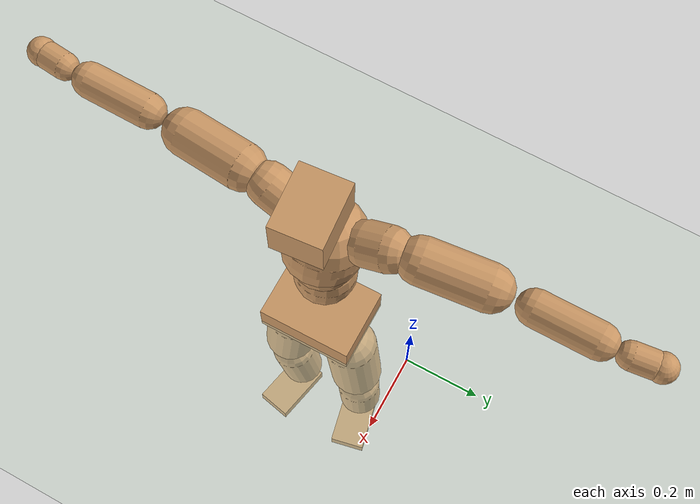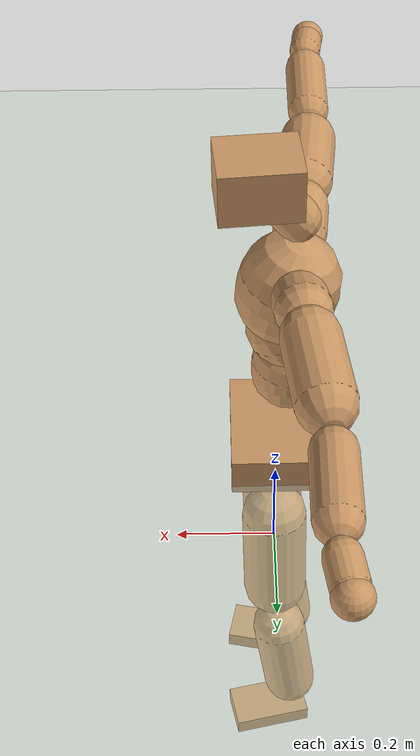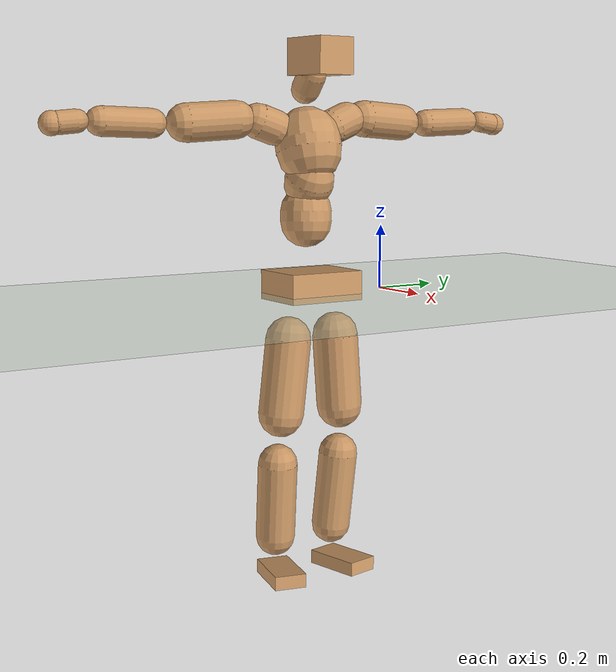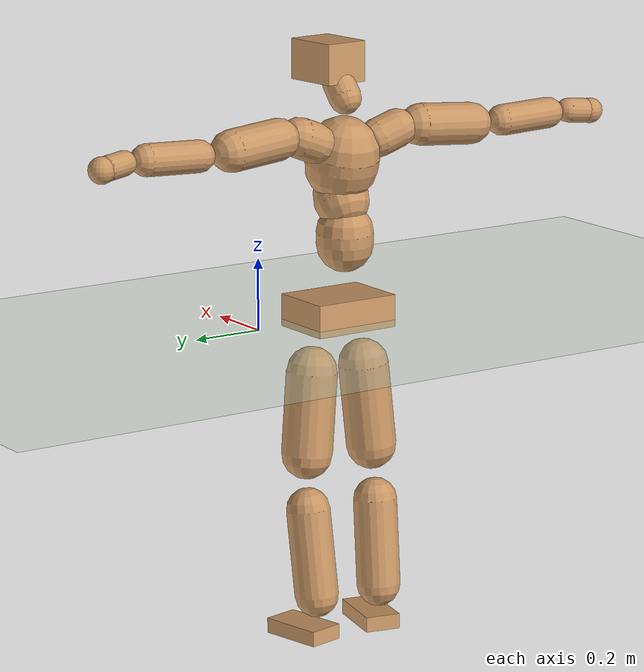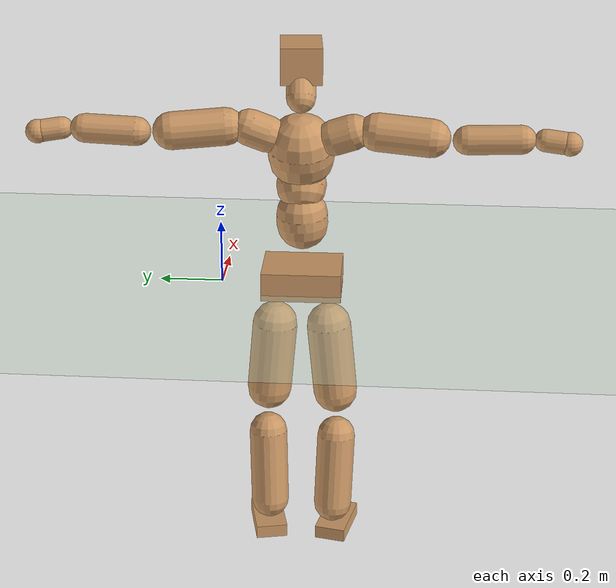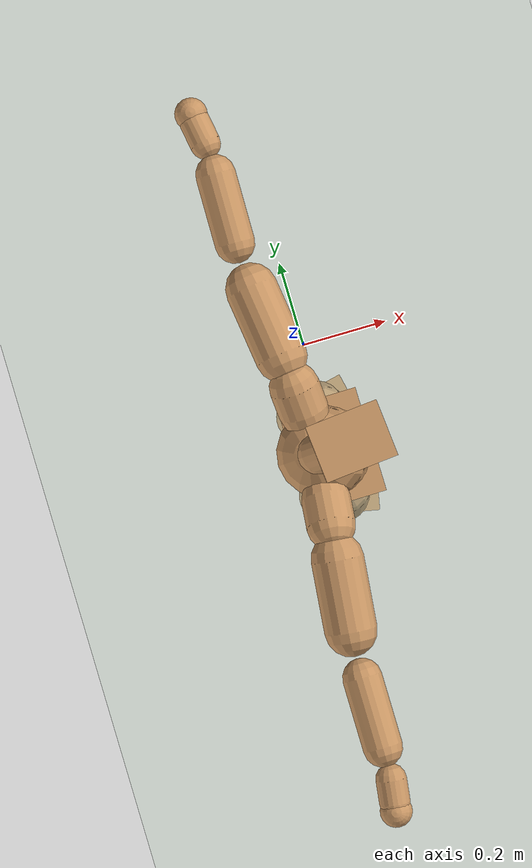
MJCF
<mujoco model="humanoid">
  <compiler coordinate="local" angle="radian"/>
  <default>
    <joint damping="0.0" armature="0.01" stiffness="0.0" limited="true"/>
    <geom conaffinity="1" condim="3" contype="7" margin="0.001" rgba="0.8 0.6 .4 1"/>
  </default>
  <asset>
    <texture type="skybox" builtin="gradient" rgb1=".4 .5 .6" rgb2="0 0 0" width="100" height="100"/>
    <texture builtin="flat" height="1278" mark="cross" markrgb="1 1 1" name="texgeom" random="0.01" rgb1="0.8 0.6 0.4" rgb2="0.8 0.6 0.4" type="cube" width="127"/>
    <texture builtin="checker" height="100" name="texplane" rgb1="0 0 0" rgb2="0.8 0.8 0.8" type="2d" width="100"/>
    <material name="MatPlane" reflectance="0.5" shininess="1" specular="1" texrepeat="60 60" texture="texplane"/>
    <material name="geom" texture="texgeom" texuniform="true"/>
  </asset>
  <worldbody>
    <light cutoff="100" diffuse="1 1 1" dir="-0 0 -1.3" directional="true" exponent="1" pos="0 0 1.3" specular=".1 .1 .1"/>
    <geom conaffinity="1" condim="3" name="floor" pos="0 0 0" rgba="0.8 0.9 0.8 1" size="100 100 .2" type="plane" material="MatPlane"/>
    <body name="Pelvis" pos="-0.0003 -0.2564 0.0376">
      <freejoint name="Pelvis"/>
      <geom type="box" contype="1" conaffinity="1" density="500" pos="-0.0068 -0.0001 -0.0134" size="0.0945 0.1253 0.0456" quat="1.0000 0.0000 0.0000 0.0042" name="Pelvis"/>
      <body name="L_Hip" pos="-0.0055 0.0817 -0.0999">
        <joint name="L_Hip_x" type="hinge" pos="0 0 0" axis="1 0 0" stiffness="800" damping="80" armature="0.02" range="-180.0000 180.0000"/>
        <joint name="L_Hip_y" type="hinge" pos="0 0 0" axis="0 1 0" stiffness="800" damping="80" armature="0.02" range="-180.0000 180.0000"/>
        <joint name="L_Hip_z" type="hinge" pos="0 0 0" axis="0 0 1" stiffness="800" damping="80" armature="0.02" range="-180.0000 180.0000"/>
        <geom type="capsule" contype="1" conaffinity="1" density="500" fromto="-0.0012 0.0066 -0.0771 -0.0048 0.0262 -0.3085" size="0.0715" name="L_Hip"/>
        <body name="L_Knee" pos="-0.006 0.0328 -0.3856">
          <joint name="L_Knee_x" type="hinge" pos="0 0 0" axis="1 0 0" stiffness="800" damping="80" armature="0.02" range="-180.0000 180.0000"/>
          <joint name="L_Knee_y" type="hinge" pos="0 0 0" axis="0 1 0" stiffness="800" damping="80" armature="0.02" range="-180.0000 180.0000"/>
          <joint name="L_Knee_z" type="hinge" pos="0 0 0" axis="0 0 1" stiffness="800" damping="80" armature="0.02" range="-180.0000 180.0000"/>
          <geom type="capsule" contype="1" conaffinity="1" density="500" fromto="-0.0101 -0.0025 -0.0813 -0.0405 -0.0098 -0.3253" size="0.0617" name="L_Knee"/>
          <body name="L_Ankle" pos="-0.0506 -0.0123 -0.4066">
            <joint name="L_Ankle_x" type="hinge" pos="0 0 0" axis="1 0 0" stiffness="800" damping="80" armature="0.02" range="-180.0000 180.0000"/>
            <joint name="L_Ankle_y" type="hinge" pos="0 0 0" axis="0 1 0" stiffness="800" damping="80" armature="0.02" range="-180.0000 180.0000"/>
            <joint name="L_Ankle_z" type="hinge" pos="0 0 0" axis="0 0 1" stiffness="800" damping="80" armature="0.02" range="-180.0000 180.0000"/>
            <geom type="box" contype="1" conaffinity="1" density="500" pos="0.0628 0.0135 -0.0295" size="0.0908 0.0513 0.0215" quat="0.9944 0.0000 0.0000 0.1056" name="L_Ankle"/>
            <body name="L_Toe" pos="0.1256 0.027 -0.0589">
              <joint name="L_Toe_x" type="hinge" pos="0 0 0" axis="1 0 0" stiffness="500" damping="50" armature="0.02" range="-180.0000 180.0000"/>
              <joint name="L_Toe_y" type="hinge" pos="0 0 0" axis="0 1 0" stiffness="500" damping="50" armature="0.02" range="-180.0000 180.0000"/>
              <joint name="L_Toe_z" type="hinge" pos="0 0 0" axis="0 0 1" stiffness="500" damping="50" armature="0.02" range="-180.0000 180.0000"/>
              <geom type="box" contype="1" conaffinity="1" density="500" pos="0.0000 0.0000 0.0312" size="0.001 0.0025 0.0012" quat="0.9938 0.0000 0.0000 0.1115" name="L_Toe"/>
            </body>
          </body>
        </body>
      </body>
      <body name="R_Hip" pos="-0.0032 -0.0775 -0.0987">
        <joint name="R_Hip_x" type="hinge" pos="0 0 0" axis="1 0 0" stiffness="800" damping="80" armature="0.02" range="-180.0000 180.0000"/>
        <joint name="R_Hip_y" type="hinge" pos="0 0 0" axis="0 1 0" stiffness="800" damping="80" armature="0.02" range="-180.0000 180.0000"/>
        <joint name="R_Hip_z" type="hinge" pos="0 0 0" axis="0 0 1" stiffness="800" damping="80" armature="0.02" range="-180.0000 180.0000"/>
        <geom type="capsule" contype="1" conaffinity="1" density="500" fromto="-0.0019 -0.0078 -0.0788 -0.0078 -0.0311 -0.3150" size="0.0707" name="R_Hip"/>
        <body name="R_Knee" pos="-0.0097 -0.0389 -0.3938">
          <joint name="R_Knee_x" type="hinge" pos="0 0 0" axis="1 0 0" stiffness="800" damping="80" armature="0.02" range="-180.0000 180.0000"/>
          <joint name="R_Knee_y" type="hinge" pos="0 0 0" axis="0 1 0" stiffness="800" damping="80" armature="0.02" range="-180.0000 180.0000"/>
          <joint name="R_Knee_z" type="hinge" pos="0 0 0" axis="0 0 1" stiffness="800" damping="80" armature="0.02" range="-180.0000 180.0000"/>
          <geom type="capsule" contype="1" conaffinity="1" density="500" fromto="-0.0100 0.0028 -0.0812 -0.0401 0.0111 -0.3247" size="0.0618" name="R_Knee"/>
          <body name="R_Ankle" pos="-0.0501 0.0139 -0.4059">
            <joint name="R_Ankle_x" type="hinge" pos="0 0 0" axis="1 0 0" stiffness="800" damping="80" armature="0.02" range="-180.0000 180.0000"/>
            <joint name="R_Ankle_y" type="hinge" pos="0 0 0" axis="0 1 0" stiffness="800" damping="80" armature="0.02" range="-180.0000 180.0000"/>
            <joint name="R_Ankle_z" type="hinge" pos="0 0 0" axis="0 0 1" stiffness="800" damping="80" armature="0.02" range="-180.0000 180.0000"/>
            <geom type="box" contype="1" conaffinity="1" density="500" pos="0.0648 -0.0136 -0.0248" size="0.0907 0.0502 0.0216" quat="0.9947 0.0000 0.0000 -0.1033" name="R_Ankle"/>
            <body name="R_Toe" pos="0.1295 -0.0272 -0.0496">
              <joint name="R_Toe_x" type="hinge" pos="0 0 0" axis="1 0 0" stiffness="500" damping="50" armature="0.02" range="-180.0000 180.0000"/>
              <joint name="R_Toe_y" type="hinge" pos="0 0 0" axis="0 1 0" stiffness="500" damping="50" armature="0.02" range="-180.0000 180.0000"/>
              <joint name="R_Toe_z" type="hinge" pos="0 0 0" axis="0 0 1" stiffness="500" damping="50" armature="0.02" range="-180.0000 180.0000"/>
              <geom type="box" contype="1" conaffinity="1" density="500" pos="0.0000 0.0000 0.0285" size="0.0009 0.0025 0.0013" quat="0.9955 0.0000 0.0000 -0.0945" name="R_Toe"/>
            </body>
          </body>
        </body>
      </body>
      <body name="Torso" pos="-0.0323 -0.0045 0.1182">
        <joint name="Torso_x" type="hinge" pos="0 0 0" axis="1 0 0" stiffness="1000" damping="100" armature="0.02" range="-180.0000 180.0000"/>
        <joint name="Torso_y" type="hinge" pos="0 0 0" axis="0 1 0" stiffness="1000" damping="100" armature="0.02" range="-180.0000 180.0000"/>
        <joint name="Torso_z" type="hinge" pos="0 0 0" axis="0 0 1" stiffness="1000" damping="100" armature="0.02" range="-180.0000 180.0000"/>
        <geom type="capsule" contype="1" conaffinity="1" density="500" fromto="-0.0058 0.0034 0.0951 -0.0039 0.0023 0.0634" size="0.08" name="Torso"/>
        <body name="Spine" pos="-0.0097 0.0057 0.1586">
          <joint name="Spine_x" type="hinge" pos="0 0 0" axis="1 0 0" stiffness="1000" damping="100" armature="0.02" range="-180.0000 180.0000"/>
          <joint name="Spine_y" type="hinge" pos="0 0 0" axis="0 1 0" stiffness="1000" damping="100" armature="0.02" range="-180.0000 180.0000"/>
          <joint name="Spine_z" type="hinge" pos="0 0 0" axis="0 0 1" stiffness="1000" damping="100" armature="0.02" range="-180.0000 180.0000"/>
          <geom type="capsule" contype="1" conaffinity="1" density="500" fromto="0.0210 0.0006 0.0345 0.0140 0.0004 0.0230" size="0.0769" name="Spine"/>
          <body name="Chest" pos="0.035 0.001 0.0575">
            <joint name="Chest_x" type="hinge" pos="0 0 0" axis="1 0 0" stiffness="1000" damping="100" armature="0.02" range="-180.0000 180.0000"/>
            <joint name="Chest_y" type="hinge" pos="0 0 0" axis="0 1 0" stiffness="1000" damping="100" armature="0.02" range="-180.0000 180.0000"/>
            <joint name="Chest_z" type="hinge" pos="0 0 0" axis="0 0 1" stiffness="1000" damping="100" armature="0.02" range="-180.0000 180.0000"/>
            <geom type="capsule" contype="1" conaffinity="1" density="500" fromto="-0.0271 -0.0004 0.0989 -0.0181 -0.0003 0.0659" size="0.1024" name="Chest"/>
            <body name="Neck" pos="-0.0497 -0.0013 0.2371">
              <joint name="Neck_x" type="hinge" pos="0 0 0" axis="1 0 0" stiffness="500" damping="50" armature="0.02" range="-180.0000 180.0000"/>
              <joint name="Neck_y" type="hinge" pos="0 0 0" axis="0 1 0" stiffness="500" damping="50" armature="0.02" range="-180.0000 180.0000"/>
              <joint name="Neck_z" type="hinge" pos="0 0 0" axis="0 0 1" stiffness="500" damping="50" armature="0.02" range="-180.0000 180.0000"/>
              <geom type="capsule" contype="1" conaffinity="1" density="500" fromto="0.0114 0.0007 0.0146 0.0457 0.0026 0.0584" size="0.0447" name="Neck"/>
              <body name="Head" pos="0.0571 0.0033 0.073">
                <joint name="Head_x" type="hinge" pos="0 0 0" axis="1 0 0" stiffness="500" damping="50" armature="0.02" range="-180.0000 180.0000"/>
                <joint name="Head_y" type="hinge" pos="0 0 0" axis="0 1 0" stiffness="500" damping="50" armature="0.02" range="-180.0000 180.0000"/>
                <joint name="Head_z" type="hinge" pos="0 0 0" axis="0 0 1" stiffness="500" damping="50" armature="0.02" range="-180.0000 180.0000"/>
                <geom type="box" contype="1" conaffinity="1" density="500" pos="0.0296 0.0026 0.0375" size="0.0809 0.0633 0.056" quat="0.9990 0.0000 0.0000 0.0446" name="Head"/>
              </body>
            </body>
            <body name="L_Thorax" pos="-0.039 0.0807 0.1304">
              <joint name="L_Thorax_x" type="hinge" pos="0 0 0" axis="1 0 0" stiffness="500" damping="50" armature="0.02" range="-180.0000 180.0000"/>
              <joint name="L_Thorax_y" type="hinge" pos="0 0 0" axis="0 1 0" stiffness="500" damping="50" armature="0.02" range="-180.0000 180.0000"/>
              <joint name="L_Thorax_z" type="hinge" pos="0 0 0" axis="0 0 1" stiffness="500" damping="50" armature="0.02" range="-180.0000 180.0000"/>
              <geom type="capsule" contype="1" conaffinity="1" density="500" fromto="-0.0015 0.0185 0.0073 -0.0060 0.0741 0.0293" size="0.0561" name="L_Thorax"/>
              <body name="L_Shoulder" pos="-0.0075 0.0927 0.0367">
                <joint name="L_Shoulder_x" type="hinge" pos="0 0 0" axis="1 0 0" stiffness="500" damping="50" armature="0.02" range="-720.0000 720.0000"/>
                <joint name="L_Shoulder_y" type="hinge" pos="0 0 0" axis="0 1 0" stiffness="500" damping="50" armature="0.02" range="-720.0000 720.0000"/>
                <joint name="L_Shoulder_z" type="hinge" pos="0 0 0" axis="0 0 1" stiffness="500" damping="50" armature="0.02" range="-720.0000 720.0000"/>
                <geom type="capsule" contype="1" conaffinity="1" density="500" fromto="-0.0069 0.0535 -0.0037 -0.0277 0.2141 -0.0147" size="0.0582" name="L_Shoulder"/>
                <body name="L_Elbow" pos="-0.0347 0.2676 -0.0184">
                  <joint name="L_Elbow_x" type="hinge" pos="0 0 0" axis="1 0 0" stiffness="500" damping="50" armature="0.02" range="-720.0000 720.0000"/>
                  <joint name="L_Elbow_y" type="hinge" pos="0 0 0" axis="0 1 0" stiffness="500" damping="50" armature="0.02" range="-720.0000 720.0000"/>
                  <joint name="L_Elbow_z" type="hinge" pos="0 0 0" axis="0 0 1" stiffness="500" damping="50" armature="0.02" range="-720.0000 720.0000"/>
                  <geom type="capsule" contype="1" conaffinity="1" density="500" fromto="0.0007 0.0524 0.0019 0.0030 0.2096 0.0078" size="0.0443" name="L_Elbow"/>
                  <body name="L_Wrist" pos="0.0037 0.262 0.0097">
                    <joint name="L_Wrist_x" type="hinge" pos="0 0 0" axis="1 0 0" stiffness="300" damping="30" armature="0.02" range="-180.0000 180.0000"/>
                    <joint name="L_Wrist_y" type="hinge" pos="0 0 0" axis="0 1 0" stiffness="300" damping="30" armature="0.02" range="-180.0000 180.0000"/>
                    <joint name="L_Wrist_z" type="hinge" pos="0 0 0" axis="0 0 1" stiffness="300" damping="30" armature="0.02" range="-180.0000 180.0000"/>
                    <geom type="capsule" contype="1" conaffinity="1" density="500" fromto="-0.0030 0.0181 -0.0022 -0.0118 0.0723 -0.0089" size="0.0343" name="L_Wrist"/>
                    <body name="L_Hand" pos="-0.0148 0.0904 -0.0111">
                      <joint name="L_Hand_x" type="hinge" pos="0 0 0" axis="1 0 0" stiffness="300" damping="30" armature="0.02" range="-180.0000 180.0000"/>
                      <joint name="L_Hand_y" type="hinge" pos="0 0 0" axis="0 1 0" stiffness="300" damping="30" armature="0.02" range="-180.0000 180.0000"/>
                      <joint name="L_Hand_z" type="hinge" pos="0 0 0" axis="0 0 1" stiffness="300" damping="30" armature="0.02" range="-180.0000 180.0000"/>
                      <geom type="sphere" contype="1" conaffinity="1" density="500" size="0.0365" pos="0.0000 0.0000 0.0000" name="L_Hand"/>
                    </body>
                  </body>
                </body>
              </body>
            </body>
            <body name="R_Thorax" pos="-0.0468 -0.0814 0.127">
              <joint name="R_Thorax_x" type="hinge" pos="0 0 0" axis="1 0 0" stiffness="500" damping="50" armature="0.02" range="-180.0000 180.0000"/>
              <joint name="R_Thorax_y" type="hinge" pos="0 0 0" axis="0 1 0" stiffness="500" damping="50" armature="0.02" range="-180.0000 180.0000"/>
              <joint name="R_Thorax_z" type="hinge" pos="0 0 0" axis="0 0 1" stiffness="500" damping="50" armature="0.02" range="-180.0000 180.0000"/>
              <geom type="capsule" contype="1" conaffinity="1" density="500" fromto="-0.0019 -0.0197 0.0071 -0.0076 -0.0787 0.0283" size="0.0546" name="R_Thorax"/>
              <body name="R_Shoulder" pos="-0.0094 -0.0984 0.0354">
                <joint name="R_Shoulder_x" type="hinge" pos="0 0 0" axis="1 0 0" stiffness="500" damping="50" armature="0.02" range="-720.0000 720.0000"/>
                <joint name="R_Shoulder_y" type="hinge" pos="0 0 0" axis="0 1 0" stiffness="500" damping="50" armature="0.02" range="-720.0000 720.0000"/>
                <joint name="R_Shoulder_z" type="hinge" pos="0 0 0" axis="0 0 1" stiffness="500" damping="50" armature="0.02" range="-720.0000 720.0000"/>
                <geom type="capsule" contype="1" conaffinity="1" density="500" fromto="-0.0055 -0.0533 -0.0032 -0.0218 -0.2131 -0.0130" size="0.0587" name="R_Shoulder"/>
                <body name="R_Elbow" pos="-0.0273 -0.2664 -0.0162">
                  <joint name="R_Elbow_x" type="hinge" pos="0 0 0" axis="1 0 0" stiffness="500" damping="50" armature="0.02" range="-720.0000 720.0000"/>
                  <joint name="R_Elbow_y" type="hinge" pos="0 0 0" axis="0 1 0" stiffness="500" damping="50" armature="0.02" range="-720.0000 720.0000"/>
                  <joint name="R_Elbow_z" type="hinge" pos="0 0 0" axis="0 0 1" stiffness="500" damping="50" armature="0.02" range="-720.0000 720.0000"/>
                  <geom type="capsule" contype="1" conaffinity="1" density="500" fromto="-0.0000 -0.0532 0.0018 -0.0001 -0.2127 0.0073" size="0.0439" name="R_Elbow"/>
                  <body name="R_Wrist" pos="-0.0002 -0.2658 0.0091">
                    <joint name="R_Wrist_x" type="hinge" pos="0 0 0" axis="1 0 0" stiffness="300" damping="30" armature="0.02" range="-180.0000 180.0000"/>
                    <joint name="R_Wrist_y" type="hinge" pos="0 0 0" axis="0 1 0" stiffness="300" damping="30" armature="0.02" range="-180.0000 180.0000"/>
                    <joint name="R_Wrist_z" type="hinge" pos="0 0 0" axis="0 0 1" stiffness="300" damping="30" armature="0.02" range="-180.0000 180.0000"/>
                    <geom type="capsule" contype="1" conaffinity="1" density="500" fromto="-0.0023 -0.0180 -0.0016 -0.0093 -0.0718 -0.0064" size="0.0345" name="R_Wrist"/>
                    <body name="R_Hand" pos="-0.0116 -0.0898 -0.008">
                      <joint name="R_Hand_x" type="hinge" pos="0 0 0" axis="1 0 0" stiffness="300" damping="30" armature="0.02" range="-180.0000 180.0000"/>
                      <joint name="R_Hand_y" type="hinge" pos="0 0 0" axis="0 1 0" stiffness="300" damping="30" armature="0.02" range="-180.0000 180.0000"/>
                      <joint name="R_Hand_z" type="hinge" pos="0 0 0" axis="0 0 1" stiffness="300" damping="30" armature="0.02" range="-180.0000 180.0000"/>
                      <geom type="sphere" contype="1" conaffinity="1" density="500" size="0.0361" pos="0.0000 0.0000 0.0000" name="R_Hand"/>
                    </body>
                  </body>
                </body>
              </body>
            </body>
          </body>
        </body>
      </body>
    </body>
  </worldbody>
  <actuator>
    <motor name="L_Hip_x" joint="L_Hip_x" gear="500"/>
    <motor name="L_Hip_y" joint="L_Hip_y" gear="500"/>
    <motor name="L_Hip_z" joint="L_Hip_z" gear="500"/>
    <motor name="L_Knee_x" joint="L_Knee_x" gear="500"/>
    <motor name="L_Knee_y" joint="L_Knee_y" gear="500"/>
    <motor name="L_Knee_z" joint="L_Knee_z" gear="500"/>
    <motor name="L_Ankle_x" joint="L_Ankle_x" gear="500"/>
    <motor name="L_Ankle_y" joint="L_Ankle_y" gear="500"/>
    <motor name="L_Ankle_z" joint="L_Ankle_z" gear="500"/>
    <motor name="L_Toe_x" joint="L_Toe_x" gear="500"/>
    <motor name="L_Toe_y" joint="L_Toe_y" gear="500"/>
    <motor name="L_Toe_z" joint="L_Toe_z" gear="500"/>
    <motor name="R_Hip_x" joint="R_Hip_x" gear="500"/>
    <motor name="R_Hip_y" joint="R_Hip_y" gear="500"/>
    <motor name="R_Hip_z" joint="R_Hip_z" gear="500"/>
    <motor name="R_Knee_x" joint="R_Knee_x" gear="500"/>
    <motor name="R_Knee_y" joint="R_Knee_y" gear="500"/>
    <motor name="R_Knee_z" joint="R_Knee_z" gear="500"/>
    <motor name="R_Ankle_x" joint="R_Ankle_x" gear="500"/>
    <motor name="R_Ankle_y" joint="R_Ankle_y" gear="500"/>
    <motor name="R_Ankle_z" joint="R_Ankle_z" gear="500"/>
    <motor name="R_Toe_x" joint="R_Toe_x" gear="500"/>
    <motor name="R_Toe_y" joint="R_Toe_y" gear="500"/>
    <motor name="R_Toe_z" joint="R_Toe_z" gear="500"/>
    <motor name="Torso_x" joint="Torso_x" gear="500"/>
    <motor name="Torso_y" joint="Torso_y" gear="500"/>
    <motor name="Torso_z" joint="Torso_z" gear="500"/>
    <motor name="Spine_x" joint="Spine_x" gear="500"/>
    <motor name="Spine_y" joint="Spine_y" gear="500"/>
    <motor name="Spine_z" joint="Spine_z" gear="500"/>
    <motor name="Chest_x" joint="Chest_x" gear="500"/>
    <motor name="Chest_y" joint="Chest_y" gear="500"/>
    <motor name="Chest_z" joint="Chest_z" gear="500"/>
    <motor name="Neck_x" joint="Neck_x" gear="500"/>
    <motor name="Neck_y" joint="Neck_y" gear="500"/>
    <motor name="Neck_z" joint="Neck_z" gear="500"/>
    <motor name="Head_x" joint="Head_x" gear="500"/>
    <motor name="Head_y" joint="Head_y" gear="500"/>
    <motor name="Head_z" joint="Head_z" gear="500"/>
    <motor name="L_Thorax_x" joint="L_Thorax_x" gear="500"/>
    <motor name="L_Thorax_y" joint="L_Thorax_y" gear="500"/>
    <motor name="L_Thorax_z" joint="L_Thorax_z" gear="500"/>
    <motor name="L_Shoulder_x" joint="L_Shoulder_x" gear="500"/>
    <motor name="L_Shoulder_y" joint="L_Shoulder_y" gear="500"/>
    <motor name="L_Shoulder_z" joint="L_Shoulder_z" gear="500"/>
    <motor name="L_Elbow_x" joint="L_Elbow_x" gear="500"/>
    <motor name="L_Elbow_y" joint="L_Elbow_y" gear="500"/>
    <motor name="L_Elbow_z" joint="L_Elbow_z" gear="500"/>
    <motor name="L_Wrist_x" joint="L_Wrist_x" gear="500"/>
    <motor name="L_Wrist_y" joint="L_Wrist_y" gear="500"/>
    <motor name="L_Wrist_z" joint="L_Wrist_z" gear="500"/>
    <motor name="L_Hand_x" joint="L_Hand_x" gear="500"/>
    <motor name="L_Hand_y" joint="L_Hand_y" gear="500"/>
    <motor name="L_Hand_z" joint="L_Hand_z" gear="500"/>
    <motor name="R_Thorax_x" joint="R_Thorax_x" gear="500"/>
    <motor name="R_Thorax_y" joint="R_Thorax_y" gear="500"/>
    <motor name="R_Thorax_z" joint="R_Thorax_z" gear="500"/>
    <motor name="R_Shoulder_x" joint="R_Shoulder_x" gear="500"/>
    <motor name="R_Shoulder_y" joint="R_Shoulder_y" gear="500"/>
    <motor name="R_Shoulder_z" joint="R_Shoulder_z" gear="500"/>
    <motor name="R_Elbow_x" joint="R_Elbow_x" gear="500"/>
    <motor name="R_Elbow_y" joint="R_Elbow_y" gear="500"/>
    <motor name="R_Elbow_z" joint="R_Elbow_z" gear="500"/>
    <motor name="R_Wrist_x" joint="R_Wrist_x" gear="500"/>
    <motor name="R_Wrist_y" joint="R_Wrist_y" gear="500"/>
    <motor name="R_Wrist_z" joint="R_Wrist_z" gear="500"/>
    <motor name="R_Hand_x" joint="R_Hand_x" gear="500"/>
    <motor name="R_Hand_y" joint="R_Hand_y" gear="500"/>
    <motor name="R_Hand_z" joint="R_Hand_z" gear="500"/>
  </actuator>
  <contact>
    <exclude body1="Torso" body2="Chest"/>
    <exclude body1="Head" body2="Chest"/>
    <exclude body1="R_Knee" body2="R_Toe"/>
    <exclude body1="R_Knee" body2="L_Ankle"/>
    <exclude body1="R_Knee" body2="L_Toe"/>
    <exclude body1="L_Knee" body2="L_Toe"/>
    <exclude body1="L_Knee" body2="R_Ankle"/>
    <exclude body1="L_Knee" body2="R_Toe"/>
    <exclude body1="L_Shoulder" body2="Chest"/>
    <exclude body1="R_Shoulder" body2="Chest"/>
  </contact>
  <sensor/>
  <size njmax="700" nconmax="700"/>
</mujoco>
